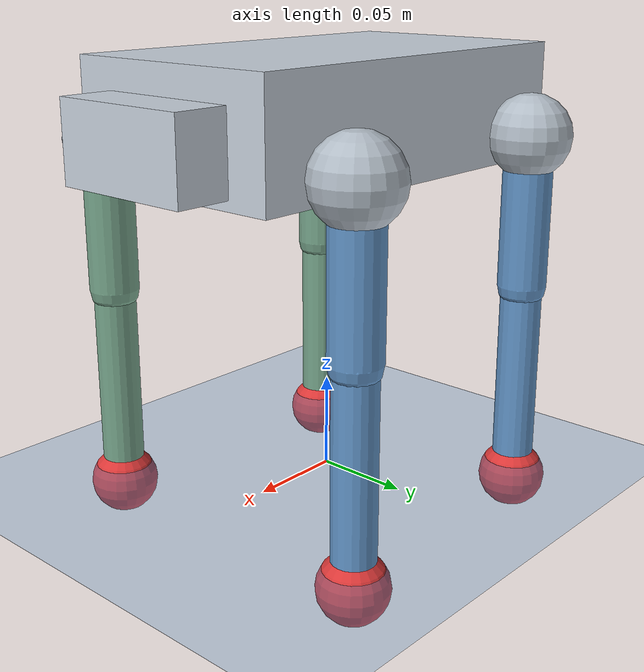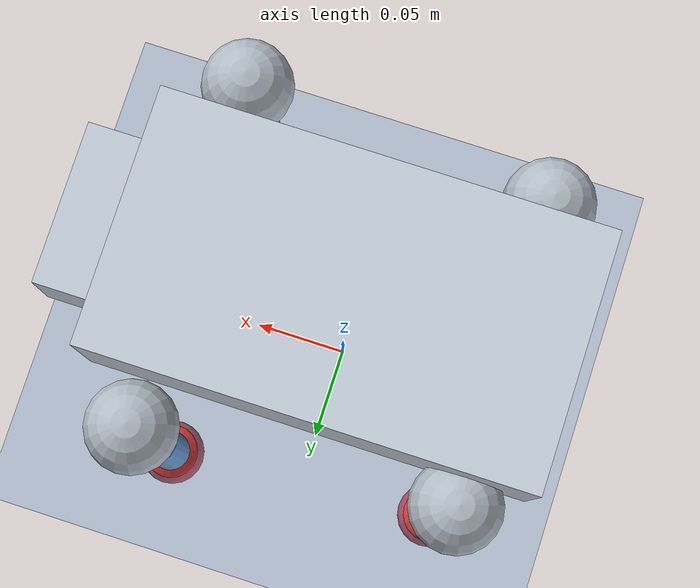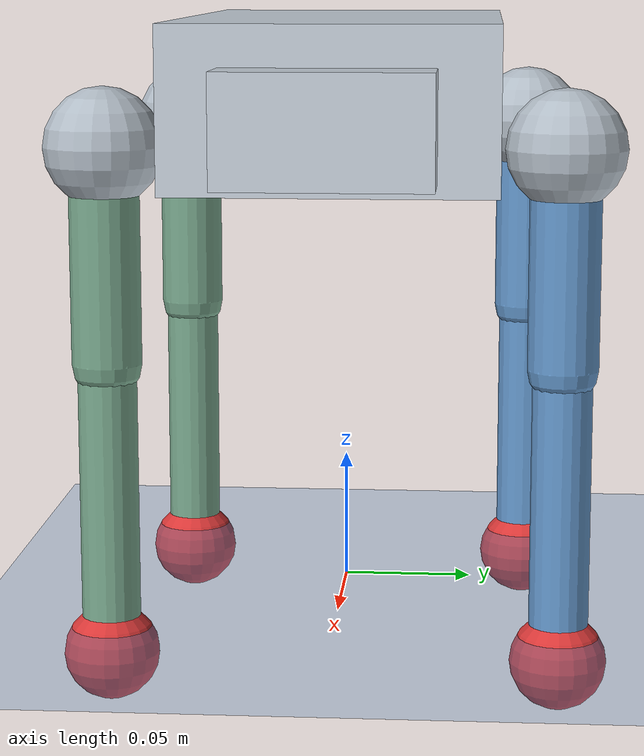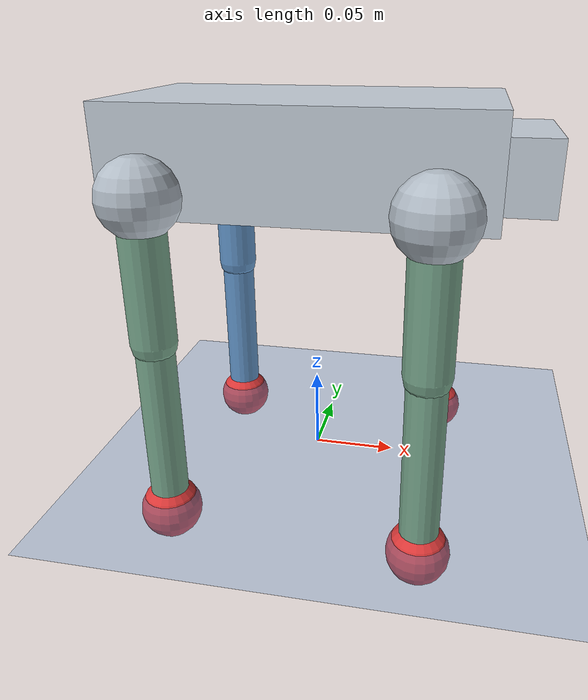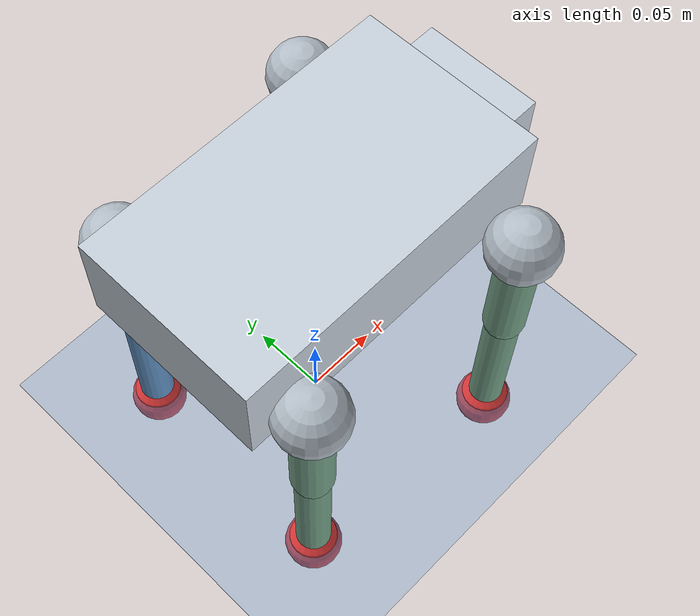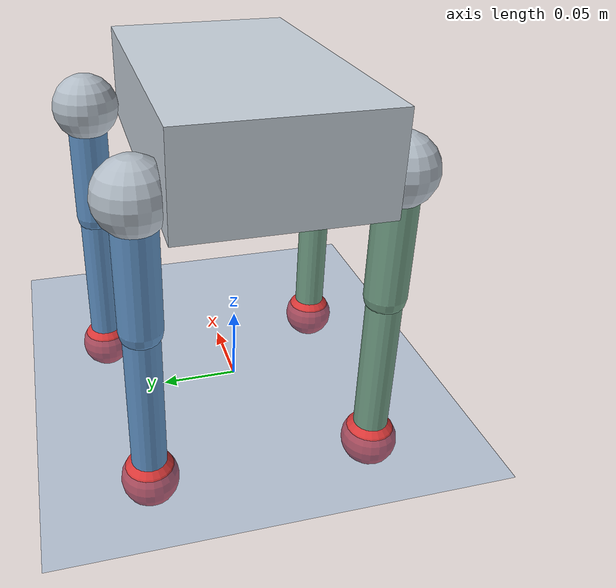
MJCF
<mujoco model="ch5_pupper_gait_demo">
  <compiler angle="radian" autolimits="true"/>
  <option timestep="0.002" gravity="0 0 -9.81" cone="elliptic" impratio="50"/>

  <visual>
    <global offwidth="720" offheight="540"/>
    <headlight ambient="0.45 0.45 0.45" diffuse="0.55 0.55 0.55" specular="0.1 0.1 0.1"/>
    <rgba haze="0.16 0.23 0.32 1"/>
    <quality shadowsize="2048"/>
  </visual>

  <asset>
    <texture name="skybox" type="skybox" builtin="gradient" rgb1=".30 .48 .70" rgb2="0.02 0.04 0.07" width="512" height="512"/>
    <texture name="grid" type="2d" builtin="checker" width="512" height="512" rgb1=".25 .46 .72" rgb2=".43 .70 .94"/>
    <material name="ground" texture="grid" texrepeat="3 3" texuniform="true" reflectance="0.08"/>
    <material name="torso" rgba="0.78 0.82 0.86 1"/>
    <material name="left_leg" rgba="0.38 0.58 0.78 1"/>
    <material name="right_leg" rgba="0.46 0.64 0.54 1"/>
    <material name="joint" rgba="0.70 0.74 0.78 1"/>
    <material name="foot" rgba="0.86 0.22 0.22 1"/>
  </asset>

  <default>
    <joint armature="0.003" damping="0.04" frictionloss="0.002" limited="true"/>
    <geom contype="0" conaffinity="0"/>
    <default class="leg_left"><geom material="left_leg" size="0.013"/></default>
    <default class="leg_right"><geom material="right_leg" size="0.013"/></default>
    <default class="foot"><geom type="sphere" size="0.018" material="foot" mass="0.025" contype="1" conaffinity="1" condim="3" friction="1.4 0.04 0.01"/></default>
  </default>

  <worldbody>
    <geom name="floor" type="plane" size="3 3 .05" material="ground" condim="3" contype="1" conaffinity="1"/>
    <light name="key" pos="0 -3 3" dir="0 1 -1" diffuse="0.9 0.9 0.9" specular="0.2 0.2 0.2"/>
    <camera name="iso" pos="0.68 -0.90 0.50" xyaxes="0.80 0.60 0 -0.22 0.30 0.93"/>

    <body name="base" pos="0 0 0.18">
      <freejoint name="root"/>
      <geom name="torso_geom" type="box" size="0.105 0.060 0.030" pos="0.0 0 0.015" material="torso" mass="1.45" contype="1" conaffinity="0"/>
      <geom name="nose" type="box" size="0.028 0.038 0.020" pos="0.105 0 0.010" material="torso" mass="0.08" contype="0" conaffinity="0"/>
      <site name="body_imu_site" pos="0.08 0 0.03" size="0.006"/>

      <body name="FL_hip" pos="0.075 0.0835 0">
        <joint name="FL_HAA" type="hinge" axis="1 0 0" range="-0.8 0.8"/>
        <geom name="FL_hip_geom" type="sphere" size="0.022" material="joint" mass="0.045"/>
        <body name="FL_thigh">
          <joint name="FL_HFE" type="hinge" axis="0 1 0" range="-1.8 1.2"/>
          <geom name="FL_thigh_geom" type="capsule" fromto="0 0 0 0 0 -0.08" class="leg_left" mass="0.16"/>
          <body name="FL_calf" pos="0 0 -0.08">
            <joint name="FL_KFE" type="hinge" axis="0 1 0" range="-2.6 0.1"/>
            <geom name="FL_calf_geom" type="capsule" fromto="0 0 0 0 0 -0.11" class="leg_left" size="0.011" mass="0.06"/>
            <body name="FL_foot_body" pos="0 0 -0.11">
              <geom name="FL_foot_geom" class="foot"/>
              <site name="FL_foot" size="0.010" material="foot"/>
            </body>
          </body>
        </body>
      </body>

      <body name="FR_hip" pos="0.075 -0.0835 0">
        <joint name="FR_HAA" type="hinge" axis="1 0 0" range="-0.8 0.8"/>
        <geom name="FR_hip_geom" type="sphere" size="0.022" material="joint" mass="0.045"/>
        <body name="FR_thigh">
          <joint name="FR_HFE" type="hinge" axis="0 1 0" range="-1.8 1.2"/>
          <geom name="FR_thigh_geom" type="capsule" fromto="0 0 0 0 0 -0.08" class="leg_right" mass="0.16"/>
          <body name="FR_calf" pos="0 0 -0.08">
            <joint name="FR_KFE" type="hinge" axis="0 1 0" range="-2.6 0.1"/>
            <geom name="FR_calf_geom" type="capsule" fromto="0 0 0 0 0 -0.11" class="leg_right" size="0.011" mass="0.06"/>
            <body name="FR_foot_body" pos="0 0 -0.11">
              <geom name="FR_foot_geom" class="foot"/>
              <site name="FR_foot" size="0.010" material="foot"/>
            </body>
          </body>
        </body>
      </body>

      <body name="RL_hip" pos="-0.075 0.0725 0">
        <joint name="RL_HAA" type="hinge" axis="1 0 0" range="-0.8 0.8"/>
        <geom name="RL_hip_geom" type="sphere" size="0.022" material="joint" mass="0.045"/>
        <body name="RL_thigh">
          <joint name="RL_HFE" type="hinge" axis="0 1 0" range="-1.8 1.2"/>
          <geom name="RL_thigh_geom" type="capsule" fromto="0 0 0 0 0 -0.08" class="leg_left" mass="0.16"/>
          <body name="RL_calf" pos="0 0 -0.08">
            <joint name="RL_KFE" type="hinge" axis="0 1 0" range="-2.6 0.1"/>
            <geom name="RL_calf_geom" type="capsule" fromto="0 0 0 0 0 -0.11" class="leg_left" size="0.011" mass="0.06"/>
            <body name="RL_foot_body" pos="0 0 -0.11">
              <geom name="RL_foot_geom" class="foot"/>
              <site name="RL_foot" size="0.010" material="foot"/>
            </body>
          </body>
        </body>
      </body>

      <body name="RR_hip" pos="-0.075 -0.0725 0">
        <joint name="RR_HAA" type="hinge" axis="1 0 0" range="-0.8 0.8"/>
        <geom name="RR_hip_geom" type="sphere" size="0.022" material="joint" mass="0.045"/>
        <body name="RR_thigh">
          <joint name="RR_HFE" type="hinge" axis="0 1 0" range="-1.8 1.2"/>
          <geom name="RR_thigh_geom" type="capsule" fromto="0 0 0 0 0 -0.08" class="leg_right" mass="0.16"/>
          <body name="RR_calf" pos="0 0 -0.08">
            <joint name="RR_KFE" type="hinge" axis="0 1 0" range="-2.6 0.1"/>
            <geom name="RR_calf_geom" type="capsule" fromto="0 0 0 0 0 -0.11" class="leg_right" size="0.011" mass="0.06"/>
            <body name="RR_foot_body" pos="0 0 -0.11">
              <geom name="RR_foot_geom" class="foot"/>
              <site name="RR_foot" size="0.010" material="foot"/>
            </body>
          </body>
        </body>
      </body>
    </body>
  </worldbody>

  <actuator>
    <general name="FL_HAA_motor" joint="FL_HAA" forcerange="-18 18" forcelimited="true" gainprm="1 0 0" biasprm="0 0 0"/>
    <general name="FL_HFE_motor" joint="FL_HFE" forcerange="-18 18" forcelimited="true" gainprm="1 0 0" biasprm="0 0 0"/>
    <general name="FL_KFE_motor" joint="FL_KFE" forcerange="-18 18" forcelimited="true" gainprm="1 0 0" biasprm="0 0 0"/>
    <general name="FR_HAA_motor" joint="FR_HAA" forcerange="-18 18" forcelimited="true" gainprm="1 0 0" biasprm="0 0 0"/>
    <general name="FR_HFE_motor" joint="FR_HFE" forcerange="-18 18" forcelimited="true" gainprm="1 0 0" biasprm="0 0 0"/>
    <general name="FR_KFE_motor" joint="FR_KFE" forcerange="-18 18" forcelimited="true" gainprm="1 0 0" biasprm="0 0 0"/>
    <general name="RL_HAA_motor" joint="RL_HAA" forcerange="-18 18" forcelimited="true" gainprm="1 0 0" biasprm="0 0 0"/>
    <general name="RL_HFE_motor" joint="RL_HFE" forcerange="-18 18" forcelimited="true" gainprm="1 0 0" biasprm="0 0 0"/>
    <general name="RL_KFE_motor" joint="RL_KFE" forcerange="-18 18" forcelimited="true" gainprm="1 0 0" biasprm="0 0 0"/>
    <general name="RR_HAA_motor" joint="RR_HAA" forcerange="-18 18" forcelimited="true" gainprm="1 0 0" biasprm="0 0 0"/>
    <general name="RR_HFE_motor" joint="RR_HFE" forcerange="-18 18" forcelimited="true" gainprm="1 0 0" biasprm="0 0 0"/>
    <general name="RR_KFE_motor" joint="RR_KFE" forcerange="-18 18" forcelimited="true" gainprm="1 0 0" biasprm="0 0 0"/>
  </actuator>

  <equality>
    <weld name="base_world_weld" body1="world" body2="base" relpose="0 0 0.18 1 0 0 0" solref="0.001 1" solimp="0.99 0.99 0.001"/>
  </equality>
</mujoco>
